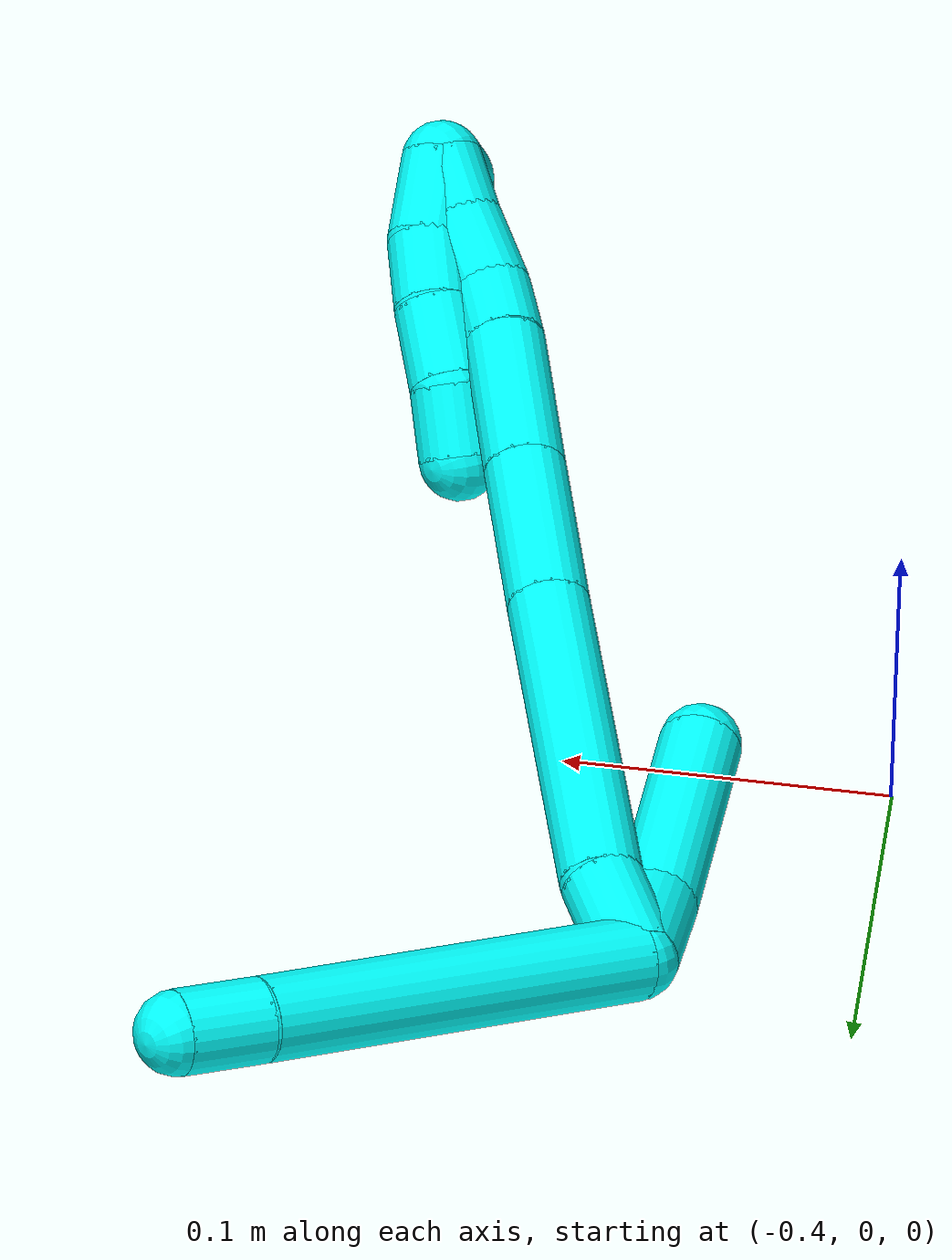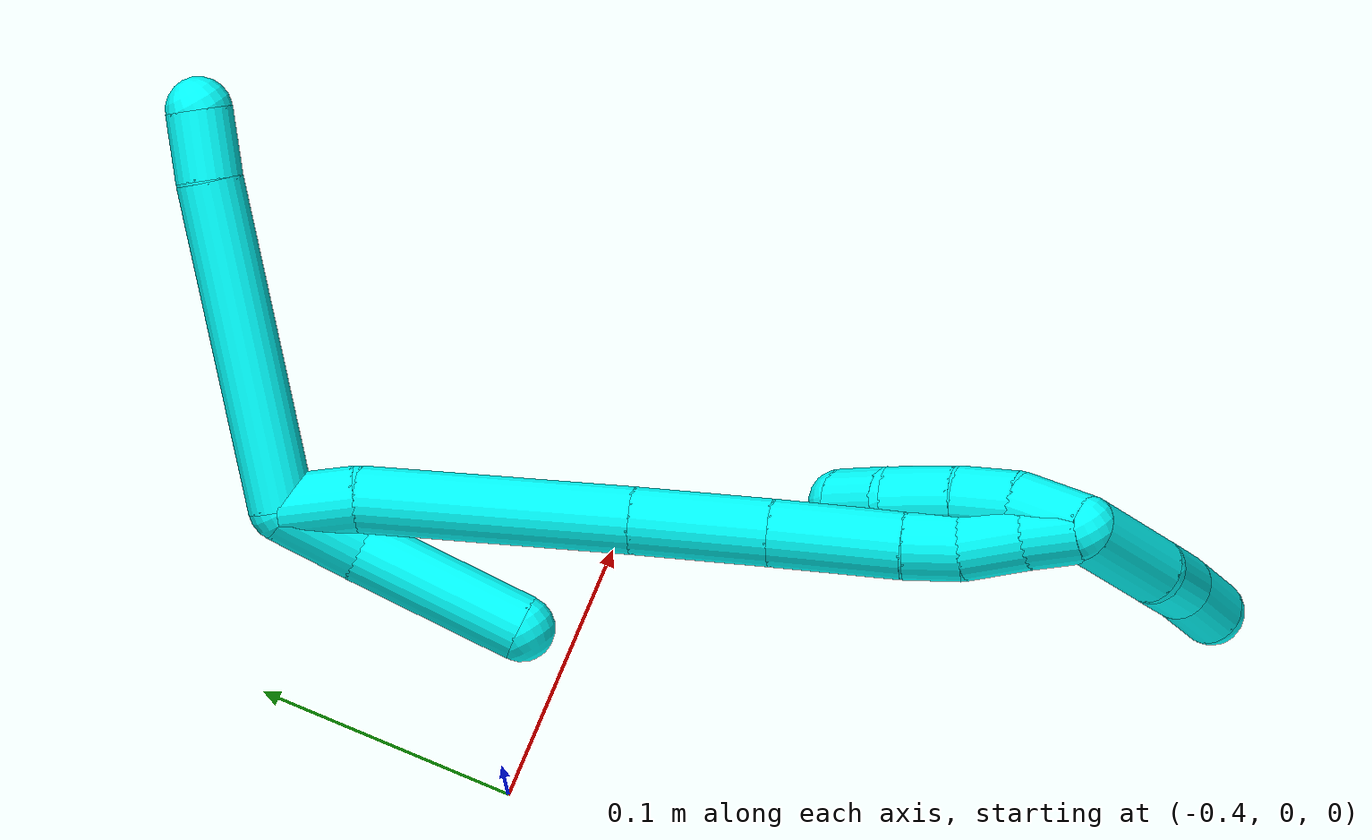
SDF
<sdf version="1.7">
 <world name="default">
  <model name="3">
   <static>0</static>
   <link name="3">
    <collision name="collision-cylinder-e_1_2_8">
     <pose>-0.016935 -0.007566 -0.059166 3.0144 -0.276643 -2.28353</pose>
     <geometry><cylinder><radius>0.0125</radius><length>0.124011</length></cylinder></geometry>
     <surface>
      <friction><ode><mu>1.16</mu><mu2>1.16</mu2><slip1>0</slip1><slip2>0</slip2></ode></friction>
      <contact><ode><kp>1e+06</kp><kd>1</kd><max_vel>0</max_vel><min_depth>0.001</min_depth></ode></contact>
     </surface>
    </collision>
    <visual name="visual-cylinder-e_1_2_8">
     <pose>-0.016935 -0.007566 -0.059166 3.0144 -0.276643 -2.28353</pose>
     <geometry><cylinder><radius>0.0125</radius><length>0.124011</length></cylinder></geometry>
     <material><ambient>0.003922 1 0.996078 1</ambient></material>
    </visual>
    <collision name="collision-cylinder-e_2_8_6">
     <pose>-0.038468 -0.016582 -0.130399 3.02202 -0.361647 -2.50876</pose>
     <geometry><cylinder><radius>0.0125</radius><length>0.025989</length></cylinder></geometry>
     <surface>
      <friction><ode><mu>1.16</mu><mu2>1.16</mu2><slip1>0</slip1><slip2>0</slip2></ode></friction>
      <contact><ode><kp>1e+06</kp><kd>1</kd><max_vel>0</max_vel><min_depth>0.001</min_depth></ode></contact>
     </surface>
    </collision>
    <visual name="visual-cylinder-e_2_8_6">
     <pose>-0.038468 -0.016582 -0.130399 3.02202 -0.361647 -2.50876</pose>
     <geometry><cylinder><radius>0.0125</radius><length>0.025989</length></cylinder></geometry>
     <material><ambient>0.003922 1 0.996078 1</ambient></material>
    </visual>
    <collision name="collision-cylinder-e_1_2_9">
     <pose>-0.00807 -0.003582 0.013823 0.25355 -0.514411 -0.067026</pose>
     <geometry><cylinder><radius>0.0125</radius><length>0.032804</length></cylinder></geometry>
     <surface>
      <friction><ode><mu>1.16</mu><mu2>1.16</mu2><slip1>0</slip1><slip2>0</slip2></ode></friction>
      <contact><ode><kp>1e+06</kp><kd>1</kd><max_vel>0</max_vel><min_depth>0.001</min_depth></ode></contact>
     </surface>
    </collision>
    <visual name="visual-cylinder-e_1_2_9">
     <pose>-0.00807 -0.003582 0.013823 0.25355 -0.514411 -0.067026</pose>
     <geometry><cylinder><radius>0.0125</radius><length>0.032804</length></cylinder></geometry>
     <material><ambient>0.003922 1 0.996078 1</ambient></material>
    </visual>
    <collision name="collision-cylinder-e_2_9_5">
     <pose>-0.028467 -0.023035 0.054571 0.532626 -0.375678 -0.103612</pose>
     <geometry><cylinder><radius>0.0125</radius><length>0.067196</length></cylinder></geometry>
     <surface>
      <friction><ode><mu>1.16</mu><mu2>1.16</mu2><slip1>0</slip1><slip2>0</slip2></ode></friction>
      <contact><ode><kp>1e+06</kp><kd>1</kd><max_vel>0</max_vel><min_depth>0.001</min_depth></ode></contact>
     </surface>
    </collision>
    <visual name="visual-cylinder-e_2_9_5">
     <pose>-0.028467 -0.023035 0.054571 0.532626 -0.375678 -0.103612</pose>
     <geometry><cylinder><radius>0.0125</radius><length>0.067196</length></cylinder></geometry>
     <material><ambient>0.003922 1 0.996078 1</ambient></material>
    </visual>
    <collision name="collision-cylinder-e_1_2_10">
     <pose>-0.009694 -0.009496 0.005186 1.07092 -0.730552 -0.446229</pose>
     <geometry><cylinder><radius>0.0125</radius><length>0.029055</length></cylinder></geometry>
     <surface>
      <friction><ode><mu>1.16</mu><mu2>1.16</mu2><slip1>0</slip1><slip2>0</slip2></ode></friction>
      <contact><ode><kp>1e+06</kp><kd>1</kd><max_vel>0</max_vel><min_depth>0.001</min_depth></ode></contact>
     </surface>
    </collision>
    <visual name="visual-cylinder-e_1_2_10">
     <pose>-0.009694 -0.009496 0.005186 1.07092 -0.730552 -0.446229</pose>
     <geometry><cylinder><radius>0.0125</radius><length>0.029055</length></cylinder></geometry>
     <material><ambient>0.003922 1 0.996078 1</ambient></material>
    </visual>
    <collision name="collision-cylinder-e_2_10_11">
     <pose>-0.048017 -0.052194 0.036928 0.896159 -0.59264 -0.291437</pose>
     <geometry><cylinder><radius>0.0125</radius><length>0.102511</length></cylinder></geometry>
     <surface>
      <friction><ode><mu>1.16</mu><mu2>1.16</mu2><slip1>0</slip1><slip2>0</slip2></ode></friction>
      <contact><ode><kp>1e+06</kp><kd>1</kd><max_vel>0</max_vel><min_depth>0.001</min_depth></ode></contact>
     </surface>
    </collision>
    <visual name="visual-cylinder-e_2_10_11">
     <pose>-0.048017 -0.052194 0.036928 0.896159 -0.59264 -0.291437</pose>
     <geometry><cylinder><radius>0.0125</radius><length>0.102511</length></cylinder></geometry>
     <material><ambient>0.003922 1 0.996078 1</ambient></material>
    </visual>
    <collision name="collision-cylinder-e_3_11_12">
     <pose>-0.090571 -0.102344 0.076905 0.901028 -0.572213 -0.282684</pose>
     <geometry><cylinder><radius>0.0125</radius><length>0.051432</length></cylinder></geometry>
     <surface>
      <friction><ode><mu>1.16</mu><mu2>1.16</mu2><slip1>0</slip1><slip2>0</slip2></ode></friction>
      <contact><ode><kp>1e+06</kp><kd>1</kd><max_vel>0</max_vel><min_depth>0.001</min_depth></ode></contact>
     </surface>
    </collision>
    <visual name="visual-cylinder-e_3_11_12">
     <pose>-0.090571 -0.102344 0.076905 0.901028 -0.572213 -0.282684</pose>
     <geometry><cylinder><radius>0.0125</radius><length>0.051432</length></cylinder></geometry>
     <material><ambient>0.003922 1 0.996078 1</ambient></material>
    </visual>
    <collision name="collision-cylinder-e_4_12_13">
     <pose>-0.117592 -0.135468 0.103256 0.896451 -0.563913 -0.276809</pose>
     <geometry><cylinder><radius>0.0125</radius><length>0.049002</length></cylinder></geometry>
     <surface>
      <friction><ode><mu>1.16</mu><mu2>1.16</mu2><slip1>0</slip1><slip2>0</slip2></ode></friction>
      <contact><ode><kp>1e+06</kp><kd>1</kd><max_vel>0</max_vel><min_depth>0.001</min_depth></ode></contact>
     </surface>
    </collision>
    <visual name="visual-cylinder-e_4_12_13">
     <pose>-0.117592 -0.135468 0.103256 0.896451 -0.563913 -0.276809</pose>
     <geometry><cylinder><radius>0.0125</radius><length>0.049002</length></cylinder></geometry>
     <material><ambient>0.003922 1 0.996078 1</ambient></material>
    </visual>
    <collision name="collision-cylinder-e_5_13_14">
     <pose>-0.137051 -0.158552 0.121343 0.929542 -0.635863 -0.327073</pose>
     <geometry><cylinder><radius>0.0125</radius><length>0.021431</length></cylinder></geometry>
     <surface>
      <friction><ode><mu>1.16</mu><mu2>1.16</mu2><slip1>0</slip1><slip2>0</slip2></ode></friction>
      <contact><ode><kp>1e+06</kp><kd>1</kd><max_vel>0</max_vel><min_depth>0.001</min_depth></ode></contact>
     </surface>
    </collision>
    <visual name="visual-cylinder-e_5_13_14">
     <pose>-0.137051 -0.158552 0.121343 0.929542 -0.635863 -0.327073</pose>
     <geometry><cylinder><radius>0.0125</radius><length>0.021431</length></cylinder></geometry>
     <material><ambient>0.003922 1 0.996078 1</ambient></material>
    </visual>
    <collision name="collision-cylinder-e_6_14_15">
     <pose>-0.150605 -0.175274 0.129836 1.24308 -0.606525 -0.440955</pose>
     <geometry><cylinder><radius>0.0125</radius><length>0.02523</length></cylinder></geometry>
     <surface>
      <friction><ode><mu>1.16</mu><mu2>1.16</mu2><slip1>0</slip1><slip2>0</slip2></ode></friction>
      <contact><ode><kp>1e+06</kp><kd>1</kd><max_vel>0</max_vel><min_depth>0.001</min_depth></ode></contact>
     </surface>
    </collision>
    <visual name="visual-cylinder-e_6_14_15">
     <pose>-0.150605 -0.175274 0.129836 1.24308 -0.606525 -0.440955</pose>
     <geometry><cylinder><radius>0.0125</radius><length>0.02523</length></cylinder></geometry>
     <material><ambient>0.003922 1 0.996078 1</ambient></material>
    </visual>
    <collision name="collision-cylinder-e_7_15_1">
     <pose>-0.163056 -0.19389 0.136118 1.24796 -0.515479 -0.375093</pose>
     <geometry><cylinder><radius>0.0125</radius><length>0.021339</length></cylinder></geometry>
     <surface>
      <friction><ode><mu>1.16</mu><mu2>1.16</mu2><slip1>0</slip1><slip2>0</slip2></ode></friction>
      <contact><ode><kp>1e+06</kp><kd>1</kd><max_vel>0</max_vel><min_depth>0.001</min_depth></ode></contact>
     </surface>
    </collision>
    <visual name="visual-cylinder-e_7_15_1">
     <pose>-0.163056 -0.19389 0.136118 1.24796 -0.515479 -0.375093</pose>
     <geometry><cylinder><radius>0.0125</radius><length>0.021339</length></cylinder></geometry>
     <material><ambient>0.003922 1 0.996078 1</ambient></material>
    </visual>
    <collision name="collision-cylinder-e_1_1_16">
     <pose>-0.165871 -0.191828 0.130838 -2.21871 0.177482 -0.354125</pose>
     <geometry><cylinder><radius>0.0125</radius><length>0.027691</length></cylinder></geometry>
     <surface>
      <friction><ode><mu>1.16</mu><mu2>1.16</mu2><slip1>0</slip1><slip2>0</slip2></ode></friction>
      <contact><ode><kp>1e+06</kp><kd>1</kd><max_vel>0</max_vel><min_depth>0.001</min_depth></ode></contact>
     </surface>
    </collision>
    <visual name="visual-cylinder-e_1_1_16">
     <pose>-0.165871 -0.191828 0.130838 -2.21871 0.177482 -0.354125</pose>
     <geometry><cylinder><radius>0.0125</radius><length>0.027691</length></cylinder></geometry>
     <material><ambient>0.003922 1 0.996078 1</ambient></material>
    </visual>
    <collision name="collision-cylinder-e_2_16_17">
     <pose>-0.158754 -0.172017 0.117299 -2.10685 0.422119 -0.720151</pose>
     <geometry><cylinder><radius>0.0125</radius><length>0.02281</length></cylinder></geometry>
     <surface>
      <friction><ode><mu>1.16</mu><mu2>1.16</mu2><slip1>0</slip1><slip2>0</slip2></ode></friction>
      <contact><ode><kp>1e+06</kp><kd>1</kd><max_vel>0</max_vel><min_depth>0.001</min_depth></ode></contact>
     </surface>
    </collision>
    <visual name="visual-cylinder-e_2_16_17">
     <pose>-0.158754 -0.172017 0.117299 -2.10685 0.422119 -0.720151</pose>
     <geometry><cylinder><radius>0.0125</radius><length>0.02281</length></cylinder></geometry>
     <material><ambient>0.003922 1 0.996078 1</ambient></material>
    </visual>
    <collision name="collision-cylinder-e_3_17_18">
     <pose>-0.148339 -0.151954 0.106979 -1.99389 0.44012 -0.666275</pose>
     <geometry><cylinder><radius>0.0125</radius><length>0.026956</length></cylinder></geometry>
     <surface>
      <friction><ode><mu>1.16</mu><mu2>1.16</mu2><slip1>0</slip1><slip2>0</slip2></ode></friction>
      <contact><ode><kp>1e+06</kp><kd>1</kd><max_vel>0</max_vel><min_depth>0.001</min_depth></ode></contact>
     </surface>
    </collision>
    <visual name="visual-cylinder-e_3_17_18">
     <pose>-0.148339 -0.151954 0.106979 -1.99389 0.44012 -0.666275</pose>
     <geometry><cylinder><radius>0.0125</radius><length>0.026956</length></cylinder></geometry>
     <material><ambient>0.003922 1 0.996078 1</ambient></material>
    </visual>
    <collision name="collision-cylinder-e_4_18_4">
     <pose>-0.140544 -0.130043 0.099451 -1.80035 0.183102 -0.230443</pose>
     <geometry><cylinder><radius>0.0125</radius><length>0.022544</length></cylinder></geometry>
     <surface>
      <friction><ode><mu>1.16</mu><mu2>1.16</mu2><slip1>0</slip1><slip2>0</slip2></ode></friction>
      <contact><ode><kp>1e+06</kp><kd>1</kd><max_vel>0</max_vel><min_depth>0.001</min_depth></ode></contact>
     </surface>
    </collision>
    <visual name="visual-cylinder-e_4_18_4">
     <pose>-0.140544 -0.130043 0.099451 -1.80035 0.183102 -0.230443</pose>
     <geometry><cylinder><radius>0.0125</radius><length>0.022544</length></cylinder></geometry>
     <material><ambient>0.003922 1 0.996078 1</ambient></material>
    </visual>
    <collision name="collision-cylinder-e_1_1_19">
     <pose>-0.182291 -0.196182 0.154899 -0.390139 -0.684542 0.140563</pose>
     <geometry><cylinder><radius>0.0125</radius><length>0.044205</length></cylinder></geometry>
     <surface>
      <friction><ode><mu>1.16</mu><mu2>1.16</mu2><slip1>0</slip1><slip2>0</slip2></ode></friction>
      <contact><ode><kp>1e+06</kp><kd>1</kd><max_vel>0</max_vel><min_depth>0.001</min_depth></ode></contact>
     </surface>
    </collision>
    <visual name="visual-cylinder-e_1_1_19">
     <pose>-0.182291 -0.196182 0.154899 -0.390139 -0.684542 0.140563</pose>
     <geometry><cylinder><radius>0.0125</radius><length>0.044205</length></cylinder></geometry>
     <material><ambient>0.003922 1 0.996078 1</ambient></material>
    </visual>
    <collision name="collision-cylinder-e_2_19_20">
     <pose>-0.205327 -0.182344 0.178288 -0.770136 -0.710875 0.298658</pose>
     <geometry><cylinder><radius>0.0125</radius><length>0.02777</length></cylinder></geometry>
     <surface>
      <friction><ode><mu>1.16</mu><mu2>1.16</mu2><slip1>0</slip1><slip2>0</slip2></ode></friction>
      <contact><ode><kp>1e+06</kp><kd>1</kd><max_vel>0</max_vel><min_depth>0.001</min_depth></ode></contact>
     </surface>
    </collision>
    <visual name="visual-cylinder-e_2_19_20">
     <pose>-0.205327 -0.182344 0.178288 -0.770136 -0.710875 0.298658</pose>
     <geometry><cylinder><radius>0.0125</radius><length>0.02777</length></cylinder></geometry>
     <material><ambient>0.003922 1 0.996078 1</ambient></material>
    </visual>
    <collision name="collision-cylinder-e_3_20_3">
     <pose>-0.222719 -0.168778 0.195221 -0.587007 -0.636861 0.198605</pose>
     <geometry><cylinder><radius>0.0125</radius><length>0.028025</length></cylinder></geometry>
     <surface>
      <friction><ode><mu>1.16</mu><mu2>1.16</mu2><slip1>0</slip1><slip2>0</slip2></ode></friction>
      <contact><ode><kp>1e+06</kp><kd>1</kd><max_vel>0</max_vel><min_depth>0.001</min_depth></ode></contact>
     </surface>
    </collision>
    <visual name="visual-cylinder-e_3_20_3">
     <pose>-0.222719 -0.168778 0.195221 -0.587007 -0.636861 0.198605</pose>
     <geometry><cylinder><radius>0.0125</radius><length>0.028025</length></cylinder></geometry>
     <material><ambient>0.003922 1 0.996078 1</ambient></material>
    </visual>
    <collision name="collision-sphere-3">
     <pose>-0.231052 -0.162539 0.2046 0 -0 0</pose>
     <geometry><sphere><radius>0.0125</radius></sphere></geometry>
     <surface>
      <friction><ode><mu>1.16</mu><mu2>1.16</mu2><slip1>0</slip1><slip2>0</slip2></ode></friction>
      <contact><ode><kp>1e+06</kp><kd>1</kd><max_vel>0</max_vel><min_depth>0.001</min_depth></ode></contact>
     </surface>
    </collision>
    <visual name="visual-sphere-3">
     <pose>-0.231052 -0.162539 0.2046 0 -0 0</pose>
     <geometry><sphere><radius>0.0125</radius></sphere></geometry>
     <material><ambient>0.003922 1 0.996078 1</ambient></material>
    </visual>
    <collision name="collision-sphere-20">
     <pose>-0.214386 -0.175018 0.185841 0 -0 0</pose>
     <geometry><sphere><radius>0.0125</radius></sphere></geometry>
     <surface>
      <friction><ode><mu>1.16</mu><mu2>1.16</mu2><slip1>0</slip1><slip2>0</slip2></ode></friction>
      <contact><ode><kp>1e+06</kp><kd>1</kd><max_vel>0</max_vel><min_depth>0.001</min_depth></ode></contact>
     </surface>
    </collision>
    <visual name="visual-sphere-20">
     <pose>-0.214386 -0.175018 0.185841 0 -0 0</pose>
     <geometry><sphere><radius>0.0125</radius></sphere></geometry>
     <material><ambient>0.003922 1 0.996078 1</ambient></material>
    </visual>
    <collision name="collision-sphere-19">
     <pose>-0.196267 -0.189669 0.170735 0 -0 0</pose>
     <geometry><sphere><radius>0.0125</radius></sphere></geometry>
     <surface>
      <friction><ode><mu>1.16</mu><mu2>1.16</mu2><slip1>0</slip1><slip2>0</slip2></ode></friction>
      <contact><ode><kp>1e+06</kp><kd>1</kd><max_vel>0</max_vel><min_depth>0.001</min_depth></ode></contact>
     </surface>
    </collision>
    <visual name="visual-sphere-19">
     <pose>-0.196267 -0.189669 0.170735 0 -0 0</pose>
     <geometry><sphere><radius>0.0125</radius></sphere></geometry>
     <material><ambient>0.003922 1 0.996078 1</ambient></material>
    </visual>
    <collision name="collision-sphere-10">
     <pose>-0.019388 -0.018992 0.010372 0 -0 0</pose>
     <geometry><sphere><radius>0.0125</radius></sphere></geometry>
     <surface>
      <friction><ode><mu>1.16</mu><mu2>1.16</mu2><slip1>0</slip1><slip2>0</slip2></ode></friction>
      <contact><ode><kp>1e+06</kp><kd>1</kd><max_vel>0</max_vel><min_depth>0.001</min_depth></ode></contact>
     </surface>
    </collision>
    <visual name="visual-sphere-10">
     <pose>-0.019388 -0.018992 0.010372 0 -0 0</pose>
     <geometry><sphere><radius>0.0125</radius></sphere></geometry>
     <material><ambient>0.003922 1 0.996078 1</ambient></material>
    </visual>
    <collision name="collision-sphere-5">
     <pose>-0.040795 -0.038906 0.081496 0 -0 0</pose>
     <geometry><sphere><radius>0.0125</radius></sphere></geometry>
     <surface>
      <friction><ode><mu>1.16</mu><mu2>1.16</mu2><slip1>0</slip1><slip2>0</slip2></ode></friction>
      <contact><ode><kp>1e+06</kp><kd>1</kd><max_vel>0</max_vel><min_depth>0.001</min_depth></ode></contact>
     </surface>
    </collision>
    <visual name="visual-sphere-5">
     <pose>-0.040795 -0.038906 0.081496 0 -0 0</pose>
     <geometry><sphere><radius>0.0125</radius></sphere></geometry>
     <material><ambient>0.003922 1 0.996078 1</ambient></material>
    </visual>
    <collision name="collision-sphere-6">
     <pose>-0.043066 -0.018032 -0.142466 0 -0 0</pose>
     <geometry><sphere><radius>0.0125</radius></sphere></geometry>
     <surface>
      <friction><ode><mu>1.16</mu><mu2>1.16</mu2><slip1>0</slip1><slip2>0</slip2></ode></friction>
      <contact><ode><kp>1e+06</kp><kd>1</kd><max_vel>0</max_vel><min_depth>0.001</min_depth></ode></contact>
     </surface>
    </collision>
    <visual name="visual-sphere-6">
     <pose>-0.043066 -0.018032 -0.142466 0 -0 0</pose>
     <geometry><sphere><radius>0.0125</radius></sphere></geometry>
     <material><ambient>0.003922 1 0.996078 1</ambient></material>
    </visual>
    <collision name="collision-sphere-9">
     <pose>-0.01614 -0.007164 0.027645 0 -0 0</pose>
     <geometry><sphere><radius>0.0125</radius></sphere></geometry>
     <surface>
      <friction><ode><mu>1.16</mu><mu2>1.16</mu2><slip1>0</slip1><slip2>0</slip2></ode></friction>
      <contact><ode><kp>1e+06</kp><kd>1</kd><max_vel>0</max_vel><min_depth>0.001</min_depth></ode></contact>
     </surface>
    </collision>
    <visual name="visual-sphere-9">
     <pose>-0.01614 -0.007164 0.027645 0 -0 0</pose>
     <geometry><sphere><radius>0.0125</radius></sphere></geometry>
     <material><ambient>0.003922 1 0.996078 1</ambient></material>
    </visual>
    <collision name="collision-sphere-2">
     <geometry><sphere><radius>0.0125</radius></sphere></geometry>
     <surface>
      <friction><ode><mu>1.16</mu><mu2>1.16</mu2><slip1>0</slip1><slip2>0</slip2></ode></friction>
      <contact><ode><kp>1e+06</kp><kd>1</kd><max_vel>0</max_vel><min_depth>0.001</min_depth></ode></contact>
     </surface>
    </collision>
    <visual name="visual-sphere-2">
     <geometry><sphere><radius>0.0125</radius></sphere></geometry>
     <material><ambient>0.003922 1 0.996078 1</ambient></material>
    </visual>
    <collision name="collision-sphere-8">
     <pose>-0.033871 -0.015133 -0.118332 0 -0 0</pose>
     <geometry><sphere><radius>0.0125</radius></sphere></geometry>
     <surface>
      <friction><ode><mu>1.16</mu><mu2>1.16</mu2><slip1>0</slip1><slip2>0</slip2></ode></friction>
      <contact><ode><kp>1e+06</kp><kd>1</kd><max_vel>0</max_vel><min_depth>0.001</min_depth></ode></contact>
     </surface>
    </collision>
    <visual name="visual-sphere-8">
     <pose>-0.033871 -0.015133 -0.118332 0 -0 0</pose>
     <geometry><sphere><radius>0.0125</radius></sphere></geometry>
     <material><ambient>0.003922 1 0.996078 1</ambient></material>
    </visual>
    <collision name="collision-sphere-11">
     <pose>-0.076646 -0.085395 0.063483 0 -0 0</pose>
     <geometry><sphere><radius>0.0125</radius></sphere></geometry>
     <surface>
      <friction><ode><mu>1.16</mu><mu2>1.16</mu2><slip1>0</slip1><slip2>0</slip2></ode></friction>
      <contact><ode><kp>1e+06</kp><kd>1</kd><max_vel>0</max_vel><min_depth>0.001</min_depth></ode></contact>
     </surface>
    </collision>
    <visual name="visual-sphere-11">
     <pose>-0.076646 -0.085395 0.063483 0 -0 0</pose>
     <geometry><sphere><radius>0.0125</radius></sphere></geometry>
     <material><ambient>0.003922 1 0.996078 1</ambient></material>
    </visual>
    <collision name="collision-sphere-12">
     <pose>-0.104496 -0.119293 0.090326 0 -0 0</pose>
     <geometry><sphere><radius>0.0125</radius></sphere></geometry>
     <surface>
      <friction><ode><mu>1.16</mu><mu2>1.16</mu2><slip1>0</slip1><slip2>0</slip2></ode></friction>
      <contact><ode><kp>1e+06</kp><kd>1</kd><max_vel>0</max_vel><min_depth>0.001</min_depth></ode></contact>
     </surface>
    </collision>
    <visual name="visual-sphere-12">
     <pose>-0.104496 -0.119293 0.090326 0 -0 0</pose>
     <geometry><sphere><radius>0.0125</radius></sphere></geometry>
     <material><ambient>0.003922 1 0.996078 1</ambient></material>
    </visual>
    <collision name="collision-sphere-13">
     <pose>-0.130688 -0.151643 0.116185 0 -0 0</pose>
     <geometry><sphere><radius>0.0125</radius></sphere></geometry>
     <surface>
      <friction><ode><mu>1.16</mu><mu2>1.16</mu2><slip1>0</slip1><slip2>0</slip2></ode></friction>
      <contact><ode><kp>1e+06</kp><kd>1</kd><max_vel>0</max_vel><min_depth>0.001</min_depth></ode></contact>
     </surface>
    </collision>
    <visual name="visual-sphere-13">
     <pose>-0.130688 -0.151643 0.116185 0 -0 0</pose>
     <geometry><sphere><radius>0.0125</radius></sphere></geometry>
     <material><ambient>0.003922 1 0.996078 1</ambient></material>
    </visual>
    <collision name="collision-sphere-14">
     <pose>-0.143415 -0.16546 0.1265 0 -0 0</pose>
     <geometry><sphere><radius>0.0125</radius></sphere></geometry>
     <surface>
      <friction><ode><mu>1.16</mu><mu2>1.16</mu2><slip1>0</slip1><slip2>0</slip2></ode></friction>
      <contact><ode><kp>1e+06</kp><kd>1</kd><max_vel>0</max_vel><min_depth>0.001</min_depth></ode></contact>
     </surface>
    </collision>
    <visual name="visual-sphere-14">
     <pose>-0.143415 -0.16546 0.1265 0 -0 0</pose>
     <geometry><sphere><radius>0.0125</radius></sphere></geometry>
     <material><ambient>0.003922 1 0.996078 1</ambient></material>
    </visual>
    <collision name="collision-sphere-15">
     <pose>-0.157796 -0.185087 0.133172 0 -0 0</pose>
     <geometry><sphere><radius>0.0125</radius></sphere></geometry>
     <surface>
      <friction><ode><mu>1.16</mu><mu2>1.16</mu2><slip1>0</slip1><slip2>0</slip2></ode></friction>
      <contact><ode><kp>1e+06</kp><kd>1</kd><max_vel>0</max_vel><min_depth>0.001</min_depth></ode></contact>
     </surface>
    </collision>
    <visual name="visual-sphere-15">
     <pose>-0.157796 -0.185087 0.133172 0 -0 0</pose>
     <geometry><sphere><radius>0.0125</radius></sphere></geometry>
     <material><ambient>0.003922 1 0.996078 1</ambient></material>
    </visual>
    <collision name="collision-sphere-1">
     <pose>-0.168315 -0.202694 0.139063 0 -0 0</pose>
     <geometry><sphere><radius>0.0125</radius></sphere></geometry>
     <surface>
      <friction><ode><mu>1.16</mu><mu2>1.16</mu2><slip1>0</slip1><slip2>0</slip2></ode></friction>
      <contact><ode><kp>1e+06</kp><kd>1</kd><max_vel>0</max_vel><min_depth>0.001</min_depth></ode></contact>
     </surface>
    </collision>
    <visual name="visual-sphere-1">
     <pose>-0.168315 -0.202694 0.139063 0 -0 0</pose>
     <geometry><sphere><radius>0.0125</radius></sphere></geometry>
     <material><ambient>0.003922 1 0.996078 1</ambient></material>
    </visual>
    <collision name="collision-sphere-18">
     <pose>-0.142597 -0.140836 0.101973 0 -0 0</pose>
     <geometry><sphere><radius>0.0125</radius></sphere></geometry>
     <surface>
      <friction><ode><mu>1.16</mu><mu2>1.16</mu2><slip1>0</slip1><slip2>0</slip2></ode></friction>
      <contact><ode><kp>1e+06</kp><kd>1</kd><max_vel>0</max_vel><min_depth>0.001</min_depth></ode></contact>
     </surface>
    </collision>
    <visual name="visual-sphere-18">
     <pose>-0.142597 -0.140836 0.101973 0 -0 0</pose>
     <geometry><sphere><radius>0.0125</radius></sphere></geometry>
     <material><ambient>0.003922 1 0.996078 1</ambient></material>
    </visual>
    <collision name="collision-sphere-16">
     <pose>-0.163426 -0.180962 0.122613 0 -0 0</pose>
     <geometry><sphere><radius>0.0125</radius></sphere></geometry>
     <surface>
      <friction><ode><mu>1.16</mu><mu2>1.16</mu2><slip1>0</slip1><slip2>0</slip2></ode></friction>
      <contact><ode><kp>1e+06</kp><kd>1</kd><max_vel>0</max_vel><min_depth>0.001</min_depth></ode></contact>
     </surface>
    </collision>
    <visual name="visual-sphere-16">
     <pose>-0.163426 -0.180962 0.122613 0 -0 0</pose>
     <geometry><sphere><radius>0.0125</radius></sphere></geometry>
     <material><ambient>0.003922 1 0.996078 1</ambient></material>
    </visual>
    <collision name="collision-sphere-17">
     <pose>-0.154081 -0.163073 0.111986 0 -0 0</pose>
     <geometry><sphere><radius>0.0125</radius></sphere></geometry>
     <surface>
      <friction><ode><mu>1.16</mu><mu2>1.16</mu2><slip1>0</slip1><slip2>0</slip2></ode></friction>
      <contact><ode><kp>1e+06</kp><kd>1</kd><max_vel>0</max_vel><min_depth>0.001</min_depth></ode></contact>
     </surface>
    </collision>
    <visual name="visual-sphere-17">
     <pose>-0.154081 -0.163073 0.111986 0 -0 0</pose>
     <geometry><sphere><radius>0.0125</radius></sphere></geometry>
     <material><ambient>0.003922 1 0.996078 1</ambient></material>
    </visual>
    <collision name="collision-sphere-4">
     <pose>-0.138492 -0.119251 0.096929 0 -0 0</pose>
     <geometry><sphere><radius>0.0125</radius></sphere></geometry>
     <surface>
      <friction><ode><mu>1.16</mu><mu2>1.16</mu2><slip1>0</slip1><slip2>0</slip2></ode></friction>
      <contact><ode><kp>1e+06</kp><kd>1</kd><max_vel>0</max_vel><min_depth>0.001</min_depth></ode></contact>
     </surface>
    </collision>
    <visual name="visual-sphere-4">
     <pose>-0.138492 -0.119251 0.096929 0 -0 0</pose>
     <geometry><sphere><radius>0.0125</radius></sphere></geometry>
     <material><ambient>0.003922 1 0.996078 1</ambient></material>
    </visual>
    <inertial>
     <pose>-0.088668 -0.089666 0.058427 0 -0 0</pose>
     <mass>0.75</mass>
     <inertia>
      <ixx>-0.000134</ixx>
      <ixy>0</ixy>
      <ixz>0</ixz>
      <iyy>7.6e-05</iyy>
      <iyz>0</iyz>
      <izz>0.000248</izz>
     </inertia>
    </inertial>
   </link>
   <pose>-0.338203 0.1163 0.042344 -1.91164 -0.477388 2.65997</pose>
  </model>
 </world>
</sdf>
